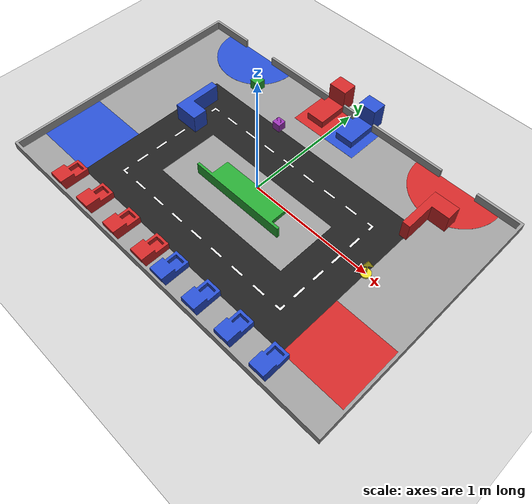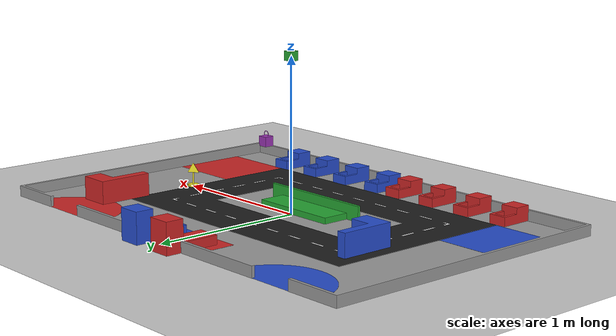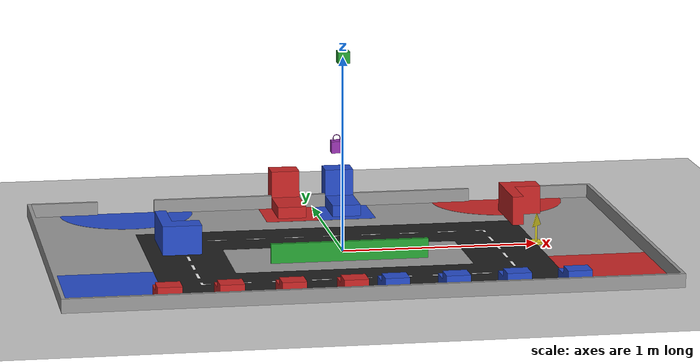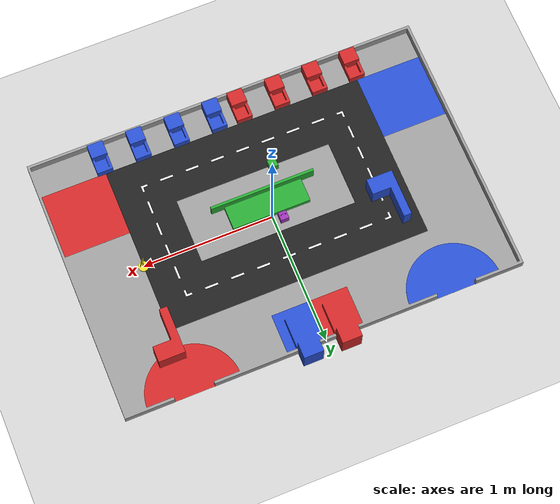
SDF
<sdf version='1.6'>
  <world name='default'>
    <light name='sun' type='directional'>
      <cast_shadows>1</cast_shadows>
      <pose frame=''>0 0 10 0 -0 0</pose>
      <diffuse>0.8 0.8 0.8 1</diffuse>
      <specular>0.2 0.2 0.2 1</specular>
      <attenuation>
        <range>1000</range>
        <constant>0.9</constant>
        <linear>0.01</linear>
        <quadratic>0.001</quadratic>
      </attenuation>
      <direction>-0.5 0.1 -0.9</direction>
    </light>
    <gravity>0 0 -9.8</gravity>
    <magnetic_field>6e-06 2.3e-05 -4.2e-05</magnetic_field>
    <atmosphere type='adiabatic'/>
    <physics name='default_physics' default='0' type='ode'>
      <max_step_size>0.001</max_step_size>
      <real_time_factor>1</real_time_factor>
      <real_time_update_rate>1000</real_time_update_rate>
    </physics>
    <scene>
      <ambient>0.4 0.4 0.4 1</ambient>
      <background>0.7 0.7 0.7 1</background>
      <shadows>1</shadows>
    </scene>
    <audio>
      <device>default</device>
    </audio>
    <wind/>
    <spherical_coordinates>
      <surface_model>EARTH_WGS84</surface_model>
      <latitude_deg>0</latitude_deg>
      <longitude_deg>0</longitude_deg>
      <elevation>0</elevation>
      <heading_deg>0</heading_deg>
    </spherical_coordinates>

    <!-- static models/objects -->

    <model name='ground_plane'>
      <static>1</static>
      <link name='link'>
        <collision name='collision'>
          <geometry>
            <plane>
              <normal>0 0 1</normal>
              <size>100 100</size>
            </plane>
          </geometry>
          <surface>
            <friction>
              <ode>
                <mu>100</mu>
                <mu2>50</mu2>
              </ode>
              <torsional>
                <ode/>
              </torsional>
            </friction>
            <contact>
              <ode/>
            </contact>
            <bounce/>
          </surface>
          <max_contacts>10</max_contacts>
        </collision>
        <visual name='visual'>
          <cast_shadows>0</cast_shadows>
          <geometry>
            <plane>
              <normal>0 0 1</normal>
              <size>100 100</size>
            </plane>
          </geometry>
          <material>
            <script>
              <uri>file://media/materials/scripts/gazebo.material</uri>
              <name>Gazebo/Grey</name>
            </script>
          </material>
        </visual>
        <self_collide>0</self_collide>
        <enable_wind>0</enable_wind>
        <kinematic>0</kinematic>
      </link>
      <pose frame=''>3.08213 1.05988 0 0 -0 0</pose>
    </model>

    <model name='background'>
      <static>1</static>
      <link name='link_0'>
        <inertial>
          <mass>1</mass>
          <inertia>
            <ixx>0.166667</ixx>
            <ixy>0</ixy>
            <ixz>0</ixz>
            <iyy>0.166667</iyy>
            <iyz>0</iyz>
            <izz>0.166667</izz>
          </inertia>
          <pose frame=''>0 0 0 0 -0 0</pose>
        </inertial>
        <pose frame=''>0 0 0 0 -0 0</pose>
        <gravity>1</gravity>
        <self_collide>0</self_collide>
        <kinematic>0</kinematic>
        <enable_wind>0</enable_wind>
        <visual name='visual'>
          <pose frame=''>0 0 0 0 -0 0</pose>
          <geometry>
            <mesh>
              <uri>model://playground.dae</uri>
              <scale>1 1 1</scale>
            </mesh>
          </geometry>
          <material>
            <lighting>1</lighting>
            <script>
              <uri>file://media/materials/scripts/gazebo.material</uri>
              <name>Gazebo/Grey</name>
            </script>
            <shader type='vertex'>
              <normal_map>__default__</normal_map>
            </shader>
            <ambient>0.3 0.3 0.3 1</ambient>
            <diffuse>0.7 0.7 0.7 1</diffuse>
            <specular>0.01 0.01 0.01 1</specular>
            <emissive>0 0 0 1</emissive>
          </material>
          <transparency>0</transparency>
          <cast_shadows>1</cast_shadows>
        </visual>
        <collision name='collision'>
          <laser_retro>0</laser_retro>
          <max_contacts>10</max_contacts>
          <pose frame=''>0 0 0 0 -0 0</pose>
          <geometry>
            <mesh>
              <uri>model://playground.dae</uri>
              <scale>1 1 1</scale>
            </mesh>
          </geometry>
          <surface>
            <friction>
              <ode>
                <mu>1</mu>
                <mu2>1</mu2>
                <fdir1>0 0 0</fdir1>
                <slip1>0</slip1>
                <slip2>0</slip2>
              </ode>
              <torsional>
                <coefficient>1</coefficient>
                <patch_radius>0</patch_radius>
                <surface_radius>0</surface_radius>
                <use_patch_radius>1</use_patch_radius>
                <ode>
                  <slip>0</slip>
                </ode>
              </torsional>
            </friction>
            <bounce>
              <restitution_coefficient>0</restitution_coefficient>
              <threshold>1e+06</threshold>
            </bounce>
            <contact>
              <collide_without_contact>0</collide_without_contact>
              <collide_without_contact_bitmask>1</collide_without_contact_bitmask>
              <collide_bitmask>1</collide_bitmask>
              <ode>
                <soft_cfm>0</soft_cfm>
                <soft_erp>0.2</soft_erp>
                <kp>1e+13</kp>
                <kd>1</kd>
                <max_vel>0.01</max_vel>
                <min_depth>0</min_depth>
              </ode>
              <bullet>
                <split_impulse>1</split_impulse>
                <split_impulse_penetration_threshold>-0.01</split_impulse_penetration_threshold>
                <soft_cfm>0</soft_cfm>
                <soft_erp>0.2</soft_erp>
                <kp>1e+13</kp>
                <kd>1</kd>
              </bullet>
            </contact>
          </surface>
        </collision>
      </link>
      <static>0</static>
      <allow_auto_disable>1</allow_auto_disable>
      <pose frame=''>0 0 0 0 -0 0</pose>
    </model>

    <model name='asphalt'>
      <static>1</static>
      <link name='link_1'>
        <inertial>
          <mass>1</mass>
          <inertia>
            <ixx>0.166667</ixx>
            <ixy>0</ixy>
            <ixz>0</ixz>
            <iyy>0.166667</iyy>
            <iyz>0</iyz>
            <izz>0.166667</izz>
          </inertia>
          <pose frame=''>0 0 0 0 -0 0</pose>
        </inertial>
        <pose frame=''>0 0 0 0 -0 0</pose>
        <gravity>1</gravity>
        <self_collide>0</self_collide>
        <kinematic>0</kinematic>
        <enable_wind>0</enable_wind>
        <visual name='visual'>
          <pose frame=''>0 0 0 0 -0 0</pose>
          <geometry>
            <mesh>
              <uri>model://asphalt.dae</uri>
              <scale>1 1 1</scale>
            </mesh>
          </geometry>
          <material>
            <lighting>1</lighting>
            <script>
              <uri>file://media/materials/scripts/gazebo.material</uri>
              <name>Gazebo/Black</name>
            </script>
            <shader type='vertex'>
              <normal_map>__default__</normal_map>
            </shader>
            <ambient>0 0 0 1</ambient>
            <diffuse>0 0 0 1</diffuse>
            <specular>0.1 0.1 0.1 1</specular>
            <emissive>0 0 0 1</emissive>
          </material>
          <transparency>0</transparency>
          <cast_shadows>1</cast_shadows>
        </visual>
        <collision name='collision'>
          <laser_retro>0</laser_retro>
          <max_contacts>10</max_contacts>
          <pose frame=''>0 0 0 0 -0 0</pose>
          <geometry>
            <mesh>
              <uri>model://asphalt.dae</uri>
              <scale>1 1 1</scale>
            </mesh>
          </geometry>
          <surface>
            <friction>
              <ode>
                <mu>1</mu>
                <mu2>1</mu2>
                <fdir1>0 0 0</fdir1>
                <slip1>0</slip1>
                <slip2>0</slip2>
              </ode>
              <torsional>
                <coefficient>1</coefficient>
                <patch_radius>0</patch_radius>
                <surface_radius>0</surface_radius>
                <use_patch_radius>1</use_patch_radius>
                <ode>
                  <slip>0</slip>
                </ode>
              </torsional>
            </friction>
            <bounce>
              <restitution_coefficient>0</restitution_coefficient>
              <threshold>1e+06</threshold>
            </bounce>
            <contact>
              <collide_without_contact>0</collide_without_contact>
              <collide_without_contact_bitmask>1</collide_without_contact_bitmask>
              <collide_bitmask>1</collide_bitmask>
              <ode>
                <soft_cfm>0</soft_cfm>
                <soft_erp>0.2</soft_erp>
                <kp>1e+13</kp>
                <kd>1</kd>
                <max_vel>0.01</max_vel>
                <min_depth>0</min_depth>
              </ode>
              <bullet>
                <split_impulse>1</split_impulse>
                <split_impulse_penetration_threshold>-0.01</split_impulse_penetration_threshold>
                <soft_cfm>0</soft_cfm>
                <soft_erp>0.2</soft_erp>
                <kp>1e+13</kp>
                <kd>1</kd>
              </bullet>
            </contact>
          </surface>
        </collision>
      </link>
      <static>0</static>
      <allow_auto_disable>1</allow_auto_disable>
      <pose frame=''>0 0 0 0 -0 0</pose>
    </model>
    <model name='stripes'>
      <static>1</static>
      <link name='link_2'>
        <inertial>
          <mass>1</mass>
          <inertia>
            <ixx>0.166667</ixx>
            <ixy>0</ixy>
            <ixz>0</ixz>
            <iyy>0.166667</iyy>
            <iyz>0</iyz>
            <izz>0.166667</izz>
          </inertia>
          <pose frame=''>0 0 0 0 -0 0</pose>
        </inertial>
        <pose frame=''>-0 0.0001 -0.009044 0 -0 0</pose>
        <gravity>1</gravity>
        <self_collide>0</self_collide>
        <kinematic>0</kinematic>
        <enable_wind>0</enable_wind>
        <visual name='visual'>
          <pose frame=''>0 0 0 0 -0 0</pose>
          <geometry>
            <mesh>
              <uri>model://stripes.dae</uri>
              <scale>1 1 1</scale>
            </mesh>
          </geometry>
          <material>
            <lighting>1</lighting>
            <script>
              <uri>file://media/materials/scripts/gazebo.material</uri>
              <name>Gazebo/White</name>
            </script>
            <shader type='vertex'>
              <normal_map>__default__</normal_map>
            </shader>
            <ambient>1 1 1 1</ambient>
            <diffuse>0.7 0.7 0.7 1</diffuse>
            <specular>0.01 0.01 0.01 1</specular>
            <emissive>0 0 0 1</emissive>
          </material>
          <transparency>0</transparency>
          <cast_shadows>1</cast_shadows>
        </visual>
        <collision name='collision'>
          <laser_retro>0</laser_retro>
          <max_contacts>10</max_contacts>
          <pose frame=''>0 0 0 0 -0 0</pose>
          <geometry>
            <mesh>
              <uri>model://stripes.dae</uri>
              <scale>1 1 1</scale>
            </mesh>
          </geometry>
          <surface>
            <friction>
              <ode>
                <mu>1</mu>
                <mu2>1</mu2>
                <fdir1>0 0 0</fdir1>
                <slip1>0</slip1>
                <slip2>0</slip2>
              </ode>
              <torsional>
                <coefficient>1</coefficient>
                <patch_radius>0</patch_radius>
                <surface_radius>0</surface_radius>
                <use_patch_radius>1</use_patch_radius>
                <ode>
                  <slip>0</slip>
                </ode>
              </torsional>
            </friction>
            <bounce>
              <restitution_coefficient>0</restitution_coefficient>
              <threshold>1e+06</threshold>
            </bounce>
            <contact>
              <collide_without_contact>0</collide_without_contact>
              <collide_without_contact_bitmask>1</collide_without_contact_bitmask>
              <collide_bitmask>1</collide_bitmask>
              <ode>
                <soft_cfm>0</soft_cfm>
                <soft_erp>0.2</soft_erp>
                <kp>1e+13</kp>
                <kd>1</kd>
                <max_vel>0.01</max_vel>
                <min_depth>0</min_depth>
              </ode>
              <bullet>
                <split_impulse>1</split_impulse>
                <split_impulse_penetration_threshold>-0.01</split_impulse_penetration_threshold>
                <soft_cfm>0</soft_cfm>
                <soft_erp>0.2</soft_erp>
                <kp>1e+13</kp>
                <kd>1</kd>
              </bullet>
            </contact>
          </surface>
        </collision>
      </link>
      <static>0</static>
      <allow_auto_disable>1</allow_auto_disable>
      <pose frame=''>0 0 0 0 -0 0</pose>
    </model>
    <model name='blue_truck_target'>
      <static>1</static>
      <link name='link_0'>
        <inertial>
          <mass>1</mass>
          <inertia>
            <ixx>0.166667</ixx>
            <ixy>0</ixy>
            <ixz>0</ixz>
            <iyy>0.166667</iyy>
            <iyz>0</iyz>
            <izz>0.166667</izz>
          </inertia>
          <pose frame=''>0 0 0 0 -0 0</pose>
        </inertial>
        <pose frame=''>0 0 0 0 -0 0</pose>
        <gravity>1</gravity>
        <self_collide>0</self_collide>
        <kinematic>0</kinematic>
        <enable_wind>0</enable_wind>
        <visual name='visual'>
          <pose frame=''>0 0 0 0 -0 0</pose>
          <geometry>
            <mesh>
              <uri>model://blue_truck_target.dae</uri>
              <scale>1 1 1</scale>
            </mesh>
          </geometry>
          <material>
            <lighting>1</lighting>
            <script>
              <uri>file://media/materials/scripts/gazebo.material</uri>
              <name>Gazebo/Blue</name>
            </script>
            <shader type='vertex'>
              <normal_map>__default__</normal_map>
            </shader>
            <ambient>0 0 1 1</ambient>
            <diffuse>0 0 1 1</diffuse>
            <specular>0.1 0.1 0.1 1</specular>
            <emissive>0 0 0 1</emissive>
          </material>
          <transparency>0</transparency>
          <cast_shadows>1</cast_shadows>
        </visual>
        <collision name='collision'>
          <laser_retro>0</laser_retro>
          <max_contacts>10</max_contacts>
          <pose frame=''>0 0 0 0 -0 0</pose>
          <geometry>
            <mesh>
              <uri>model://blue_truck_target.dae</uri>
              <scale>1 1 1</scale>
            </mesh>
          </geometry>
          <surface>
            <friction>
              <ode>
                <mu>1</mu>
                <mu2>1</mu2>
                <fdir1>0 0 0</fdir1>
                <slip1>0</slip1>
                <slip2>0</slip2>
              </ode>
              <torsional>
                <coefficient>1</coefficient>
                <patch_radius>0</patch_radius>
                <surface_radius>0</surface_radius>
                <use_patch_radius>1</use_patch_radius>
                <ode>
                  <slip>0</slip>
                </ode>
              </torsional>
            </friction>
            <bounce>
              <restitution_coefficient>0</restitution_coefficient>
              <threshold>1e+06</threshold>
            </bounce>
            <contact>
              <collide_without_contact>0</collide_without_contact>
              <collide_without_contact_bitmask>1</collide_without_contact_bitmask>
              <collide_bitmask>1</collide_bitmask>
              <ode>
                <soft_cfm>0</soft_cfm>
                <soft_erp>0.2</soft_erp>
                <kp>1e+13</kp>
                <kd>1</kd>
                <max_vel>0.01</max_vel>
                <min_depth>0</min_depth>
              </ode>
              <bullet>
                <split_impulse>1</split_impulse>
                <split_impulse_penetration_threshold>-0.01</split_impulse_penetration_threshold>
                <soft_cfm>0</soft_cfm>
                <soft_erp>0.2</soft_erp>
                <kp>1e+13</kp>
                <kd>1</kd>
              </bullet>
            </contact>
          </surface>
        </collision>
      </link>
      <link name='link_1'>
        <inertial>
          <mass>1</mass>
          <inertia>
            <ixx>0.166667</ixx>
            <ixy>0</ixy>
            <ixz>0</ixz>
            <iyy>0.166667</iyy>
            <iyz>0</iyz>
            <izz>0.166667</izz>
          </inertia>
          <pose frame=''>0 0 0 0 -0 0</pose>
        </inertial>
        <pose frame=''>0 0 0 0 -0 0</pose>
        <gravity>1</gravity>
        <self_collide>0</self_collide>
        <kinematic>0</kinematic>
        <enable_wind>0</enable_wind>
        <visual name='visual'>
          <pose frame=''>0 0 0 0 -0 0</pose>
          <geometry>
            <mesh>
              <uri>model://red_truck_target.dae</uri>
              <scale>1 1 1</scale>
            </mesh>
          </geometry>
          <material>
            <lighting>1</lighting>
            <script>
              <uri>file://media/materials/scripts/gazebo.material</uri>
              <name>Gazebo/Red</name>
            </script>
            <shader type='vertex'>
              <normal_map>__default__</normal_map>
            </shader>
            <ambient>1 0 0 1</ambient>
            <diffuse>1 0 0 1</diffuse>
            <specular>0.1 0.1 0.1 1</specular>
            <emissive>0 0 0 1</emissive>
          </material>
          <transparency>0</transparency>
          <cast_shadows>1</cast_shadows>
        </visual>
        <collision name='collision'>
          <laser_retro>0</laser_retro>
          <max_contacts>10</max_contacts>
          <pose frame=''>0 0 0 0 -0 0</pose>
          <geometry>
            <mesh>
              <uri>model://red_truck_target.dae</uri>
              <scale>1 1 1</scale>
            </mesh>
          </geometry>
          <surface>
            <friction>
              <ode>
                <mu>1</mu>
                <mu2>1</mu2>
                <fdir1>0 0 0</fdir1>
                <slip1>0</slip1>
                <slip2>0</slip2>
              </ode>
              <torsional>
                <coefficient>1</coefficient>
                <patch_radius>0</patch_radius>
                <surface_radius>0</surface_radius>
                <use_patch_radius>1</use_patch_radius>
                <ode>
                  <slip>0</slip>
                </ode>
              </torsional>
            </friction>
            <bounce>
              <restitution_coefficient>0</restitution_coefficient>
              <threshold>1e+06</threshold>
            </bounce>
            <contact>
              <collide_without_contact>0</collide_without_contact>
              <collide_without_contact_bitmask>1</collide_without_contact_bitmask>
              <collide_bitmask>1</collide_bitmask>
              <ode>
                <soft_cfm>0</soft_cfm>
                <soft_erp>0.2</soft_erp>
                <kp>1e+13</kp>
                <kd>1</kd>
                <max_vel>0.01</max_vel>
                <min_depth>0</min_depth>
              </ode>
              <bullet>
                <split_impulse>1</split_impulse>
                <split_impulse_penetration_threshold>-0.01</split_impulse_penetration_threshold>
                <soft_cfm>0</soft_cfm>
                <soft_erp>0.2</soft_erp>
                <kp>1e+13</kp>
                <kd>1</kd>
              </bullet>
            </contact>
          </surface>
        </collision>
      </link>
      <static>0</static>
      <allow_auto_disable>1</allow_auto_disable>
      <pose frame=''>0 0 0 0 -0 0</pose>
    </model>
    <model name='center'>
      <static>1</static>
      <link name='link_2'>
        <inertial>
          <mass>1</mass>
          <inertia>
            <ixx>0.166667</ixx>
            <ixy>0</ixy>
            <ixz>0</ixz>
            <iyy>0.166667</iyy>
            <iyz>0</iyz>
            <izz>0.166667</izz>
          </inertia>
          <pose frame=''>0 0 0 0 -0 0</pose>
        </inertial>
        <pose frame=''>0 0 0 0 -0 0</pose>
        <gravity>1</gravity>
        <self_collide>0</self_collide>
        <kinematic>0</kinematic>
        <enable_wind>0</enable_wind>
        <visual name='visual'>
          <pose frame=''>0 0 0 0 -0 0</pose>
          <geometry>
            <mesh>
              <uri>model://center.dae</uri>
              <scale>1 1 1</scale>
            </mesh>
          </geometry>
          <material>
            <lighting>1</lighting>
            <script>
              <uri>file://media/materials/scripts/gazebo.material</uri>
              <name>Gazebo/Green</name>
            </script>
            <shader type='vertex'>
              <normal_map>__default__</normal_map>
            </shader>
            <ambient>0 1 0 1</ambient>
            <diffuse>0 1 0 1</diffuse>
            <specular>0.1 0.1 0.1 1</specular>
            <emissive>0 0 0 1</emissive>
          </material>
          <transparency>0</transparency>
          <cast_shadows>1</cast_shadows>
        </visual>
        <collision name='collision'>
          <laser_retro>0</laser_retro>
          <max_contacts>10</max_contacts>
          <pose frame=''>0 0 0 0 -0 0</pose>
          <geometry>
            <mesh>
              <uri>model://center.dae</uri>
              <scale>1 1 1</scale>
            </mesh>
          </geometry>
          <surface>
            <friction>
              <ode>
                <mu>1</mu>
                <mu2>1</mu2>
                <fdir1>0 0 0</fdir1>
                <slip1>0</slip1>
                <slip2>0</slip2>
              </ode>
              <torsional>
                <coefficient>1</coefficient>
                <patch_radius>0</patch_radius>
                <surface_radius>0</surface_radius>
                <use_patch_radius>1</use_patch_radius>
                <ode>
                  <slip>0</slip>
                </ode>
              </torsional>
            </friction>
            <bounce>
              <restitution_coefficient>0</restitution_coefficient>
              <threshold>1e+06</threshold>
            </bounce>
            <contact>
              <collide_without_contact>0</collide_without_contact>
              <collide_without_contact_bitmask>1</collide_without_contact_bitmask>
              <collide_bitmask>1</collide_bitmask>
              <ode>
                <soft_cfm>0</soft_cfm>
                <soft_erp>0.2</soft_erp>
                <kp>1e+13</kp>
                <kd>1</kd>
                <max_vel>0.01</max_vel>
                <min_depth>0</min_depth>
              </ode>
              <bullet>
                <split_impulse>1</split_impulse>
                <split_impulse_penetration_threshold>-0.01</split_impulse_penetration_threshold>
                <soft_cfm>0</soft_cfm>
                <soft_erp>0.2</soft_erp>
                <kp>1e+13</kp>
                <kd>1</kd>
              </bullet>
            </contact>
          </surface>
        </collision>
      </link>
      <static>0</static>
      <allow_auto_disable>1</allow_auto_disable>
      <pose frame=''>0 0 0 0 -0 0</pose>
    </model>
    <model name='red_square'>
      <static>1</static>
      <link name='link_5'>
        <inertial>
          <mass>1</mass>
          <inertia>
            <ixx>0.166667</ixx>
            <ixy>0</ixy>
            <ixz>0</ixz>
            <iyy>0.166667</iyy>
            <iyz>0</iyz>
            <izz>0.166667</izz>
          </inertia>
          <pose frame=''>0 0 0 0 -0 0</pose>
        </inertial>
        <pose frame=''>0 0 0 0 -0 0</pose>
        <gravity>1</gravity>
        <self_collide>0</self_collide>
        <kinematic>0</kinematic>
        <enable_wind>0</enable_wind>
        <visual name='visual'>
          <pose frame=''>0 0 0 0 -0 0</pose>
          <geometry>
            <mesh>
              <uri>model://blue_square.dae</uri>
              <scale>1 1 1</scale>
            </mesh>
          </geometry>
          <material>
            <lighting>1</lighting>
            <script>
              <uri>file://media/materials/scripts/gazebo.material</uri>
              <name>Gazebo/Blue</name>
            </script>
            <shader type='vertex'>
              <normal_map>__default__</normal_map>
            </shader>
            <ambient>0 0 1 1</ambient>
            <diffuse>0 0 1 1</diffuse>
            <specular>0.1 0.1 0.1 1</specular>
            <emissive>0 0 0 1</emissive>
          </material>
          <transparency>0</transparency>
          <cast_shadows>1</cast_shadows>
        </visual>
        <collision name='collision'>
          <laser_retro>0</laser_retro>
          <max_contacts>10</max_contacts>
          <pose frame=''>0 0 0 0 -0 0</pose>
          <geometry>
            <mesh>
              <uri>model://blue_square.dae</uri>
              <scale>1 1 1</scale>
            </mesh>
          </geometry>
          <surface>
            <friction>
              <ode>
                <mu>1</mu>
                <mu2>1</mu2>
                <fdir1>0 0 0</fdir1>
                <slip1>0</slip1>
                <slip2>0</slip2>
              </ode>
              <torsional>
                <coefficient>1</coefficient>
                <patch_radius>0</patch_radius>
                <surface_radius>0</surface_radius>
                <use_patch_radius>1</use_patch_radius>
                <ode>
                  <slip>0</slip>
                </ode>
              </torsional>
            </friction>
            <bounce>
              <restitution_coefficient>0</restitution_coefficient>
              <threshold>1e+06</threshold>
            </bounce>
            <contact>
              <collide_without_contact>0</collide_without_contact>
              <collide_without_contact_bitmask>1</collide_without_contact_bitmask>
              <collide_bitmask>1</collide_bitmask>
              <ode>
                <soft_cfm>0</soft_cfm>
                <soft_erp>0.2</soft_erp>
                <kp>1e+13</kp>
                <kd>1</kd>
                <max_vel>0.01</max_vel>
                <min_depth>0</min_depth>
              </ode>
              <bullet>
                <split_impulse>1</split_impulse>
                <split_impulse_penetration_threshold>-0.01</split_impulse_penetration_threshold>
                <soft_cfm>0</soft_cfm>
                <soft_erp>0.2</soft_erp>
                <kp>1e+13</kp>
                <kd>1</kd>
              </bullet>
            </contact>
          </surface>
        </collision>
      </link>
      <link name='link_6'>
        <inertial>
          <mass>1</mass>
          <inertia>
            <ixx>0.166667</ixx>
            <ixy>0</ixy>
            <ixz>0</ixz>
            <iyy>0.166667</iyy>
            <iyz>0</iyz>
            <izz>0.166667</izz>
          </inertia>
          <pose frame=''>0 0 0 0 -0 0</pose>
        </inertial>
        <pose frame=''>0 0 0 0 -0 0</pose>
        <gravity>1</gravity>
        <self_collide>0</self_collide>
        <kinematic>0</kinematic>
        <enable_wind>0</enable_wind>
        <visual name='visual'>
          <pose frame=''>0 0 0 0 -0 0</pose>
          <geometry>
            <mesh>
              <uri>model://red_square.dae</uri>
              <scale>1 1 1</scale>
            </mesh>
          </geometry>
          <material>
            <lighting>1</lighting>
            <script>
              <uri>file://media/materials/scripts/gazebo.material</uri>
              <name>Gazebo/Red</name>
            </script>
            <shader type='vertex'>
              <normal_map>__default__</normal_map>
            </shader>
            <ambient>1 0 0 1</ambient>
            <diffuse>1 0 0 1</diffuse>
            <specular>0.1 0.1 0.1 1</specular>
            <emissive>0 0 0 1</emissive>
          </material>
          <transparency>0</transparency>
          <cast_shadows>1</cast_shadows>
        </visual>
        <collision name='collision'>
          <laser_retro>0</laser_retro>
          <max_contacts>10</max_contacts>
          <pose frame=''>0 0 0 0 -0 0</pose>
          <geometry>
            <mesh>
              <uri>model://red_square.dae</uri>
              <scale>1 1 1</scale>
            </mesh>
          </geometry>
          <surface>
            <friction>
              <ode>
                <mu>1</mu>
                <mu2>1</mu2>
                <fdir1>0 0 0</fdir1>
                <slip1>0</slip1>
                <slip2>0</slip2>
              </ode>
              <torsional>
                <coefficient>1</coefficient>
                <patch_radius>0</patch_radius>
                <surface_radius>0</surface_radius>
                <use_patch_radius>1</use_patch_radius>
                <ode>
                  <slip>0</slip>
                </ode>
              </torsional>
            </friction>
            <bounce>
              <restitution_coefficient>0</restitution_coefficient>
              <threshold>1e+06</threshold>
            </bounce>
            <contact>
              <collide_without_contact>0</collide_without_contact>
              <collide_without_contact_bitmask>1</collide_without_contact_bitmask>
              <collide_bitmask>1</collide_bitmask>
              <ode>
                <soft_cfm>0</soft_cfm>
                <soft_erp>0.2</soft_erp>
                <kp>1e+13</kp>
                <kd>1</kd>
                <max_vel>0.01</max_vel>
                <min_depth>0</min_depth>
              </ode>
              <bullet>
                <split_impulse>1</split_impulse>
                <split_impulse_penetration_threshold>-0.01</split_impulse_penetration_threshold>
                <soft_cfm>0</soft_cfm>
                <soft_erp>0.2</soft_erp>
                <kp>1e+13</kp>
                <kd>1</kd>
              </bullet>
            </contact>
          </surface>
        </collision>
      </link>
      <static>0</static>
      <allow_auto_disable>1</allow_auto_disable>
      <pose frame=''>0 0 0 0 -0 0</pose>
    </model>
    <model name='blue_half_cylinder'>
      <static>1</static>
      <link name='link_7'>
        <inertial>
          <mass>1</mass>
          <inertia>
            <ixx>0.166667</ixx>
            <ixy>0</ixy>
            <ixz>0</ixz>
            <iyy>0.166667</iyy>
            <iyz>0</iyz>
            <izz>0.166667</izz>
          </inertia>
          <pose frame=''>0 0 0 0 -0 0</pose>
        </inertial>
        <pose frame=''>0 0 0 0 -0 0</pose>
        <gravity>1</gravity>
        <self_collide>0</self_collide>
        <kinematic>0</kinematic>
        <enable_wind>0</enable_wind>
        <visual name='visual'>
          <pose frame=''>0 0 0 0 -0 0</pose>
          <geometry>
            <mesh>
              <uri>model://red_half_cylinder.dae</uri>
              <scale>1 1 1</scale>
            </mesh>
          </geometry>
          <material>
            <lighting>1</lighting>
            <script>
              <uri>file://media/materials/scripts/gazebo.material</uri>
              <name>Gazebo/Red</name>
            </script>
            <shader type='vertex'>
              <normal_map>__default__</normal_map>
            </shader>
            <ambient>1 0 0 1</ambient>
            <diffuse>1 0 0 1</diffuse>
            <specular>0.1 0.1 0.1 1</specular>
            <emissive>0 0 0 1</emissive>
          </material>
          <transparency>0</transparency>
          <cast_shadows>1</cast_shadows>
        </visual>
        <collision name='collision'>
          <laser_retro>0</laser_retro>
          <max_contacts>10</max_contacts>
          <pose frame=''>0 0 0 0 -0 0</pose>
          <geometry>
            <mesh>
              <uri>model://red_half_cylinder.dae</uri>
              <scale>1 1 1</scale>
            </mesh>
          </geometry>
          <surface>
            <friction>
              <ode>
                <mu>1</mu>
                <mu2>1</mu2>
                <fdir1>0 0 0</fdir1>
                <slip1>0</slip1>
                <slip2>0</slip2>
              </ode>
              <torsional>
                <coefficient>1</coefficient>
                <patch_radius>0</patch_radius>
                <surface_radius>0</surface_radius>
                <use_patch_radius>1</use_patch_radius>
                <ode>
                  <slip>0</slip>
                </ode>
              </torsional>
            </friction>
            <bounce>
              <restitution_coefficient>0</restitution_coefficient>
              <threshold>1e+06</threshold>
            </bounce>
            <contact>
              <collide_without_contact>0</collide_without_contact>
              <collide_without_contact_bitmask>1</collide_without_contact_bitmask>
              <collide_bitmask>1</collide_bitmask>
              <ode>
                <soft_cfm>0</soft_cfm>
                <soft_erp>0.2</soft_erp>
                <kp>1e+13</kp>
                <kd>1</kd>
                <max_vel>0.01</max_vel>
                <min_depth>0</min_depth>
              </ode>
              <bullet>
                <split_impulse>1</split_impulse>
                <split_impulse_penetration_threshold>-0.01</split_impulse_penetration_threshold>
                <soft_cfm>0</soft_cfm>
                <soft_erp>0.2</soft_erp>
                <kp>1e+13</kp>
                <kd>1</kd>
              </bullet>
            </contact>
          </surface>
        </collision>
      </link>
      <link name='link_8'>
        <inertial>
          <mass>1</mass>
          <inertia>
            <ixx>0.166667</ixx>
            <ixy>0</ixy>
            <ixz>0</ixz>
            <iyy>0.166667</iyy>
            <iyz>0</iyz>
            <izz>0.166667</izz>
          </inertia>
          <pose frame=''>0 0 0 0 -0 0</pose>
        </inertial>
        <pose frame=''>0 0 0 0 -0 0</pose>
        <gravity>1</gravity>
        <self_collide>0</self_collide>
        <kinematic>0</kinematic>
        <enable_wind>0</enable_wind>
        <visual name='visual'>
          <pose frame=''>0 0 0 0 -0 0</pose>
          <geometry>
            <mesh>
              <uri>model://blue_half_cylinder.dae</uri>
              <scale>1 1 1</scale>
            </mesh>
          </geometry>
          <material>
            <lighting>1</lighting>
            <script>
              <uri>file://media/materials/scripts/gazebo.material</uri>
              <name>Gazebo/Blue</name>
            </script>
            <shader type='vertex'>
              <normal_map>__default__</normal_map>
            </shader>
            <ambient>0 0 1 1</ambient>
            <diffuse>0 0 1 1</diffuse>
            <specular>0.1 0.1 0.1 1</specular>
            <emissive>0 0 0 1</emissive>
          </material>
          <transparency>0</transparency>
          <cast_shadows>1</cast_shadows>
        </visual>
        <collision name='collision'>
          <laser_retro>0</laser_retro>
          <max_contacts>10</max_contacts>
          <pose frame=''>0 0 0 0 -0 0</pose>
          <geometry>
            <mesh>
              <uri>model://blue_half_cylinder.dae</uri>
              <scale>1 1 1</scale>
            </mesh>
          </geometry>
          <surface>
            <friction>
              <ode>
                <mu>1</mu>
                <mu2>1</mu2>
                <fdir1>0 0 0</fdir1>
                <slip1>0</slip1>
                <slip2>0</slip2>
              </ode>
              <torsional>
                <coefficient>1</coefficient>
                <patch_radius>0</patch_radius>
                <surface_radius>0</surface_radius>
                <use_patch_radius>1</use_patch_radius>
                <ode>
                  <slip>0</slip>
                </ode>
              </torsional>
            </friction>
            <bounce>
              <restitution_coefficient>0</restitution_coefficient>
              <threshold>1e+06</threshold>
            </bounce>
            <contact>
              <collide_without_contact>0</collide_without_contact>
              <collide_without_contact_bitmask>1</collide_without_contact_bitmask>
              <collide_bitmask>1</collide_bitmask>
              <ode>
                <soft_cfm>0</soft_cfm>
                <soft_erp>0.2</soft_erp>
                <kp>1e+13</kp>
                <kd>1</kd>
                <max_vel>0.01</max_vel>
                <min_depth>0</min_depth>
              </ode>
              <bullet>
                <split_impulse>1</split_impulse>
                <split_impulse_penetration_threshold>-0.01</split_impulse_penetration_threshold>
                <soft_cfm>0</soft_cfm>
                <soft_erp>0.2</soft_erp>
                <kp>1e+13</kp>
                <kd>1</kd>
              </bullet>
            </contact>
          </surface>
        </collision>
      </link>
      <static>0</static>
      <allow_auto_disable>1</allow_auto_disable>
      <pose frame=''>0 0 0 0 -0 0</pose>
    </model>
    <gui fullscreen='0'>
      <camera name='user_camera'>
        <pose frame=''>2.07101 3.31167 2.22282 -0 0.427058 -2.1921</pose>
        <view_controller>orbit</view_controller>
        <projection_type>perspective</projection_type>
      </camera>
    </gui>

    <!-- spawned/dynamic objects -->

    <include>
        <uri>model://red_truck</uri>
        <pose>1.06165 0.691468 0.080746 0 -0 0</pose>
    </include>

    <include>
        <uri>model://blue_truck</uri>
        <pose>-0.81448 0.10004 0.075998 -3.14159 0 0</pose>
    </include>

    <include>
        <uri>model://battery</uri>
        <pose>0 0.2 0.5 0 0 0</pose>
    </include>

    <include>
        <uri>model://cube</uri>
        <pose>0 0 1 0 0 0</pose>
    </include>

    <include>
        <uri>model://traffic_sign</uri>
        <pose>1 0 0 0 0 0</pose>
    </include>

    <include>
        <uri>model://blue_car</uri>
        <pose>0.1 -0.913236 0.044351 0 0  1.5708</pose>
    </include>

    <include>
        <uri>model://blue_car</uri>
        <pose>0.4 -0.90834 0.043375 0 0 1.57088</pose>
    </include>

    <include>
        <uri>model://blue_car</uri>
        <pose>0.7 -0.90834 0.043375 0 0 1.570888</pose>
    </include>

    <include>
        <uri>model://blue_car</uri>
        <pose>1.0 -0.90834 0.043375 0 0 1.57088</pose>
    </include>

    <include>
        <uri>model://red_car</uri>
        <pose>-0.1 -0.913236 0.044351 0 0  1.5708</pose>
    </include>

    <include>
        <uri>model://red_car</uri>
        <pose>-0.4 -0.913236 0.044351 0 0  1.5708</pose>
    </include>

    <include>
        <uri>model://red_car</uri>
        <pose>-0.7 -0.913236 0.044351 0 0  1.5708</pose>
    </include>

    <include>
        <uri>model://red_car</uri>
        <pose>-1.0 -0.913236 0.044351 0 0  1.5708</pose>
    </include>

  </world>
</sdf>

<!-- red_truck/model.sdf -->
<sdf version='1.6'>
<model name='red_truck'>
      <link name='link'>
        <inertial>
          <mass>0.712</mass>
          <inertia>
            <ixx>0.1</ixx>
            <ixy>0</ixy>
            <ixz>0</ixz>
            <iyy>0.1</iyy>
            <iyz>0</iyz>
            <izz>0.1</izz>
          </inertia>
          <pose frame=''>0 0 0 0 -0 0</pose>
        </inertial>
        <pose frame=''>0 0 0 0 -0 0</pose>
        <gravity>1</gravity>
        <self_collide>0</self_collide>
        <kinematic>0</kinematic>
        <enable_wind>0</enable_wind>
        <visual name='visual'>
          <pose frame=''>0 0 0 0 -0 0</pose>
          <geometry>
            <mesh>
              <uri>model://truck.dae</uri>
              <scale>1 1 1</scale>
            </mesh>
          </geometry>
          <material>
            <lighting>1</lighting>
            <script>
              <uri>file://media/materials/scripts/gazebo.material</uri>
              <name>Gazebo/Red</name>
            </script>
            <shader type='vertex'>
              <normal_map>__default__</normal_map>
            </shader>
            <ambient>1 0 0 1</ambient>
            <diffuse>1 0 0 1</diffuse>
            <specular>0.1 0.1 0.1 1</specular>
            <emissive>0 0 0 1</emissive>
          </material>
          <transparency>0</transparency>
          <cast_shadows>1</cast_shadows>
        </visual>
        <collision name='collision'>
          <laser_retro>0</laser_retro>
          <max_contacts>10</max_contacts>
          <pose frame=''>0 0 0 0 -0 0</pose>
          <geometry>
            <mesh>
              <uri>model://truck.dae</uri>
              <scale>1 1 1</scale>
            </mesh>
          </geometry>
          <surface>
            <friction>
              <ode>
                <mu>1</mu>
                <mu2>1</mu2>
                <fdir1>0 0 0</fdir1>
                <slip1>0</slip1>
                <slip2>0</slip2>
              </ode>
              <torsional>
                <coefficient>1</coefficient>
                <patch_radius>0</patch_radius>
                <surface_radius>0</surface_radius>
                <use_patch_radius>1</use_patch_radius>
                <ode>
                  <slip>0</slip>
                </ode>
              </torsional>
            </friction>
            <bounce>
              <restitution_coefficient>0</restitution_coefficient>
              <threshold>1e+06</threshold>
            </bounce>
            <contact>
              <collide_without_contact>0</collide_without_contact>
              <collide_without_contact_bitmask>1</collide_without_contact_bitmask>
              <collide_bitmask>1</collide_bitmask>
              <ode>
                <soft_cfm>0</soft_cfm>
                <soft_erp>0.2</soft_erp>
                <kp>1e+13</kp>
                <kd>1</kd>
                <max_vel>0.01</max_vel>
                <min_depth>0</min_depth>
              </ode>
              <bullet>
                <split_impulse>1</split_impulse>
                <split_impulse_penetration_threshold>-0.01</split_impulse_penetration_threshold>
                <soft_cfm>0</soft_cfm>
                <soft_erp>0.2</soft_erp>
                <kp>1e+13</kp>
                <kd>1</kd>
              </bullet>
            </contact>
          </surface>
        </collision>
      </link>
      <static>0</static>
      <allow_auto_disable>1</allow_auto_disable>
      <pose frame=''>0 0 0 0 -0 0</pose>
    </model>
</sdf>

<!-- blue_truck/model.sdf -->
<sdf version='1.6'>
<model name='blue_truck'>
      <link name='link'>
        <inertial>
          <mass>0.712</mass>
          <inertia>
            <ixx>0.1</ixx>
            <ixy>0</ixy>
            <ixz>0</ixz>
            <iyy>0.1</iyy>
            <iyz>0</iyz>
            <izz>0.1</izz>
          </inertia>
          <pose frame=''>0 0 0 0 -0 0</pose>
        </inertial>
        <pose frame=''>0 0 0 0 -0 0</pose>
        <gravity>1</gravity>
        <self_collide>0</self_collide>
        <kinematic>0</kinematic>
        <enable_wind>0</enable_wind>
        <visual name='visual'>
          <pose frame=''>0 0 0 0 -0 0</pose>
          <geometry>
            <mesh>
              <uri>model://truck.dae</uri>
              <scale>1 1 1</scale>
            </mesh>
          </geometry>
          <material>
            <lighting>1</lighting>
            <script>
              <uri>file://media/materials/scripts/gazebo.material</uri>
              <name>Gazebo/Blue</name>
            </script>
            <shader type='vertex'>
              <normal_map>__default__</normal_map>
            </shader>
            <ambient>0 0 1 1</ambient>
            <diffuse>0 0 1 1</diffuse>
            <specular>0.1 0.1 0.1 1</specular>
            <emissive>0 0 0 1</emissive>
          </material>
          <transparency>0</transparency>
          <cast_shadows>1</cast_shadows>
        </visual>
        <collision name='collision'>
          <laser_retro>0</laser_retro>
          <max_contacts>10</max_contacts>
          <pose frame=''>0 0 0 0 -0 0</pose>
          <geometry>
            <mesh>
              <uri>model://truck.dae</uri>
              <scale>1 1 1</scale>
            </mesh>
          </geometry>
          <surface>
            <friction>
              <ode>
                <mu>1</mu>
                <mu2>1</mu2>
                <fdir1>0 0 0</fdir1>
                <slip1>0</slip1>
                <slip2>0</slip2>
              </ode>
              <torsional>
                <coefficient>1</coefficient>
                <patch_radius>0</patch_radius>
                <surface_radius>0</surface_radius>
                <use_patch_radius>1</use_patch_radius>
                <ode>
                  <slip>0</slip>
                </ode>
              </torsional>
            </friction>
            <bounce>
              <restitution_coefficient>0</restitution_coefficient>
              <threshold>1e+06</threshold>
            </bounce>
            <contact>
              <collide_without_contact>0</collide_without_contact>
              <collide_without_contact_bitmask>1</collide_without_contact_bitmask>
              <collide_bitmask>1</collide_bitmask>
              <ode>
                <soft_cfm>0</soft_cfm>
                <soft_erp>0.2</soft_erp>
                <kp>1e+13</kp>
                <kd>1</kd>
                <max_vel>0.01</max_vel>
                <min_depth>0</min_depth>
              </ode>
              <bullet>
                <split_impulse>1</split_impulse>
                <split_impulse_penetration_threshold>-0.01</split_impulse_penetration_threshold>
                <soft_cfm>0</soft_cfm>
                <soft_erp>0.2</soft_erp>
                <kp>1e+13</kp>
                <kd>1</kd>
              </bullet>
            </contact>
          </surface>
        </collision>
      </link>
      <static>0</static>
      <allow_auto_disable>1</allow_auto_disable>
      <pose frame=''>0 0 0 0 0 0</pose>
    </model>
</sdf>

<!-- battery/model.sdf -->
<sdf version='1.6'>
<model name='battery'>
      <link name='link_6'>
        <inertial>
          <mass>0.068</mass>
          <inertia>
            <ixx>0.0001</ixx>
            <ixy>0</ixy>
            <ixz>0</ixz>
            <iyy>0.0001</iyy>
            <iyz>0</iyz>
            <izz>0.0001</izz>
          </inertia>
          <pose frame=''>0 0 0 0 -0 0</pose>
        </inertial>
        <pose frame=''>0 0 0 0 -0 0</pose>
        <gravity>1</gravity>
        <self_collide>0</self_collide>
        <kinematic>0</kinematic>
        <enable_wind>0</enable_wind>
        <visual name='visual'>
          <pose frame=''>0 0 0 0 -0 0</pose>
          <geometry>
            <mesh>
              <uri>model://bat.dae</uri>
              <scale>1 1 1</scale>
            </mesh>
          </geometry>
          <material>
            <lighting>1</lighting>
            <script>
              <uri>file://media/materials/scripts/gazebo.material</uri>
              <name>Gazebo/Purple</name>
            </script>
            <shader type='vertex'>
              <normal_map>__default__</normal_map>
            </shader>
            <ambient>0.7 0 0.7 1</ambient>
            <diffuse>0.7 0 0.7 1</diffuse>
            <specular>0.1 0.1 0.1 1</specular>
            <emissive>0 0 0 1</emissive>
          </material>
          <transparency>0</transparency>
          <cast_shadows>1</cast_shadows>
        </visual>
        <collision name='collision'>
          <laser_retro>0</laser_retro>
          <max_contacts>10</max_contacts>
          <pose frame=''>0 0 0 0 -0 0</pose>
          <geometry>
            <mesh>
              <uri>model://bat.dae</uri>
              <scale>1 1 1</scale>
            </mesh>
          </geometry>
          <surface>
            <friction>
              <ode>
                <mu>1</mu>
                <mu2>1</mu2>
                <fdir1>0 0 0</fdir1>
                <slip1>0</slip1>
                <slip2>0</slip2>
              </ode>
              <torsional>
                <coefficient>1</coefficient>
                <patch_radius>0</patch_radius>
                <surface_radius>0</surface_radius>
                <use_patch_radius>1</use_patch_radius>
                <ode>
                  <slip>0</slip>
                </ode>
              </torsional>
            </friction>
            <bounce>
              <restitution_coefficient>0</restitution_coefficient>
              <threshold>1e+06</threshold>
            </bounce>
            <contact>
              <collide_without_contact>0</collide_without_contact>
              <collide_without_contact_bitmask>1</collide_without_contact_bitmask>
              <collide_bitmask>1</collide_bitmask>
              <ode>
                <soft_cfm>0</soft_cfm>
                <soft_erp>0.2</soft_erp>
                <kp>1e+13</kp>
                <kd>1</kd>
                <max_vel>0.01</max_vel>
                <min_depth>0</min_depth>
              </ode>
              <bullet>
                <split_impulse>1</split_impulse>
                <split_impulse_penetration_threshold>-0.01</split_impulse_penetration_threshold>
                <soft_cfm>0</soft_cfm>
                <soft_erp>0.2</soft_erp>
                <kp>1e+13</kp>
                <kd>1</kd>
              </bullet>
            </contact>
          </surface>
        </collision>
      </link>
      <static>0</static>
      <allow_auto_disable>1</allow_auto_disable>
      <pose frame=''>0 0 0 0 0 0</pose>
    </model>
</sdf>

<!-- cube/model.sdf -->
<!-- inertia computed from https://en.wikipedia.org/wiki/List_of_moments_of_inertia -->

<sdf version='1.6'>
 <model name='cube'>
      <link name='link_0'>
        <inertial>
          <mass>0.1</mass>
          <inertia>
            <ixx>0.00006</ixx>
            <ixy>0</ixy>
            <ixz>0</ixz>
            <iyy>0.00006</iyy>
            <iyz>0</iyz>
            <izz>0.00006</izz>
          </inertia>
          <pose frame=''>0 0 0 0 -0 0</pose>
        </inertial>
        <pose frame=''>0 0 0 0 -0 0</pose>
        <gravity>1</gravity>
        <self_collide>0</self_collide>
        <kinematic>0</kinematic>
        <enable_wind>0</enable_wind>
        <visual name='visual'>
          <pose frame=''>0 0 0 0 -0 0</pose>
          <geometry>
            <mesh>
              <uri>model://cube.dae</uri>
              <scale>1 1 1</scale>
            </mesh>
          </geometry>
          <material>
            <lighting>1</lighting>
            <script>
              <uri>file://media/materials/scripts/gazebo.material</uri>
              <name>Gazebo/Green</name>
            </script>
            <shader type='vertex'>
              <normal_map>__default__</normal_map>
            </shader>
            <ambient>0.1 1 0.1 1</ambient>
            <diffuse>0.1 1 0.1 1</diffuse>
            <specular>0.1 0.1 0.1 1</specular>
            <emissive>0 0 0 1</emissive>
          </material>
          <transparency>0</transparency>
          <cast_shadows>1</cast_shadows>
        </visual>
        <collision name='collision'>
          <laser_retro>0</laser_retro>
          <max_contacts>10</max_contacts>
          <pose frame=''>0 0 0 0 -0 0</pose>
          <geometry>
            <mesh>
              <uri>model://cube.dae</uri>
              <scale>1 1 1</scale>
            </mesh>
          </geometry>
          <surface>
            <friction>
              <ode>
                <mu>1</mu>
                <mu2>1</mu2>
                <fdir1>0 0 0</fdir1>
                <slip1>0</slip1>
                <slip2>0</slip2>
              </ode>
              <torsional>
                <coefficient>1</coefficient>
                <patch_radius>0</patch_radius>
                <surface_radius>0</surface_radius>
                <use_patch_radius>1</use_patch_radius>
                <ode>
                  <slip>0</slip>
                </ode>
              </torsional>
            </friction>
            <bounce>
              <restitution_coefficient>0</restitution_coefficient>
              <threshold>1e+06</threshold>
            </bounce>
            <contact>
              <collide_without_contact>0</collide_without_contact>
              <collide_without_contact_bitmask>1</collide_without_contact_bitmask>
              <collide_bitmask>1</collide_bitmask>
              <ode>
                <soft_cfm>0</soft_cfm>
                <soft_erp>0.2</soft_erp>
                <kp>1e+13</kp>
                <kd>1</kd>
                <max_vel>0.01</max_vel>
                <min_depth>0</min_depth>
              </ode>
              <bullet>
                <split_impulse>1</split_impulse>
                <split_impulse_penetration_threshold>-0.01</split_impulse_penetration_threshold>
                <soft_cfm>0</soft_cfm>
                <soft_erp>0.2</soft_erp>
                <kp>1e+13</kp>
                <kd>1</kd>
              </bullet>
            </contact>
          </surface>
        </collision>
      </link>
      <static>0</static>
      <allow_auto_disable>1</allow_auto_disable>
      <pose frame=''>0 0 0 0 0 0</pose>
    </model>
</sdf>

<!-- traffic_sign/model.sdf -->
<sdf version="1.6">
<model name='traffic_sign'>
    <link name='link'>
    <inertial>
        <mass>0.168</mass>
        <inertia>
        <ixx>0.0001</ixx>
        <ixy>0</ixy>
        <ixz>0</ixz>
        <iyy>0.0001</iyy>
        <iyz>0</iyz>
        <izz>0.0001</izz>
        </inertia>
        <pose frame=''>0 0 0 0 -0 0</pose>
    </inertial>
    <pose frame=''>0 0 0 0 -0 0</pose>
    <gravity>1</gravity>
    <self_collide>0</self_collide>
    <kinematic>0</kinematic>
    <enable_wind>0</enable_wind>
    <visual name='visual'>
        <pose frame=''>0 0 0 0 -0 0</pose>
        <geometry>
        <mesh>
            <uri>model://traffic_sign.dae</uri>
            <scale>1 1 1</scale>
        </mesh>
        </geometry>
        <material>
        <lighting>1</lighting>
        <script>
            <uri>file://media/materials/scripts/gazebo.material</uri>
            <name>Gazebo/Yellow</name>
        </script>
        <shader type='pixel'>
            <normal_map>__default__</normal_map>
        </shader>
        <ambient>1 1 0 1</ambient>
        <diffuse>1 1 0 1</diffuse>
        <emissive>0 0 0 1</emissive>
        <specular>0 0 0 0</specular>
        </material>
        <transparency>0</transparency>
        <cast_shadows>1</cast_shadows>
    </visual>
    <collision name='collision'>
        <laser_retro>0</laser_retro>
        <max_contacts>10</max_contacts>
        <pose frame=''>0 0 0 0 -0 0</pose>
        <geometry>
        <mesh>
            <uri>model://traffic_sign.dae</uri>
            <scale>1 1 1</scale>
        </mesh>
        </geometry>
        <surface>
        <friction>
            <ode>
            <mu>1</mu>
            <mu2>1</mu2>
            <fdir1>0 0 0</fdir1>
            <slip1>0</slip1>
            <slip2>0</slip2>
            </ode>
            <torsional>
            <coefficient>1</coefficient>
            <patch_radius>0</patch_radius>
            <surface_radius>0</surface_radius>
            <use_patch_radius>1</use_patch_radius>
            <ode>
                <slip>0</slip>
            </ode>
            </torsional>
        </friction>
        <bounce>
            <restitution_coefficient>0</restitution_coefficient>
            <threshold>1e+06</threshold>
        </bounce>
        <contact>
            <collide_without_contact>0</collide_without_contact>
            <collide_without_contact_bitmask>1</collide_without_contact_bitmask>
            <collide_bitmask>1</collide_bitmask>
            <ode>
            <soft_cfm>0</soft_cfm>
            <soft_erp>0.2</soft_erp>
            <kp>1e+13</kp>
            <kd>1</kd>
            <max_vel>0.01</max_vel>
            <min_depth>0</min_depth>
            </ode>
            <bullet>
            <split_impulse>1</split_impulse>
            <split_impulse_penetration_threshold>-0.01</split_impulse_penetration_threshold>
            <soft_cfm>0</soft_cfm>
            <soft_erp>0.2</soft_erp>
            <kp>1e+13</kp>
            <kd>1</kd>
            </bullet>
        </contact>
        </surface>
    </collision>
    </link>
    <static>0</static>
    <allow_auto_disable>1</allow_auto_disable>
    <pose frame=''>0 0 0 0 00 0</pose>
</model>
</sdf>

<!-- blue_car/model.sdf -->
<sdf version='1.6'>
<model name='blue_car'>
      <link name='blue_car_link'>
        <inertial>
          <mass>1</mass>
          <inertia>
            <ixx>0.166667</ixx>
            <ixy>0</ixy>
            <ixz>0</ixz>
            <iyy>0.166667</iyy>
            <iyz>0</iyz>
            <izz>0.166667</izz>
          </inertia>
          <pose frame=''>0 0 0 0 -0 0</pose>
        </inertial>
        <pose frame=''>0 0 0 0 -0 0</pose>
        <self_collide>0</self_collide>
        <enable_wind>0</enable_wind>
        <kinematic>0</kinematic>
        <gravity>1</gravity>
        <visual name='visual'>
          <pose frame=''>0 0 0 0 -0 0</pose>
          <geometry>
            <mesh>
              <uri>model://car.dae</uri>
              <scale>1 1 1</scale>
            </mesh>
          </geometry>
          <material>
            <lighting>1</lighting>
            <script>
              <uri>file://media/materials/scripts/gazebo.material</uri>
              <name>Gazebo/Blue</name>
            </script>
            <shader type='vertex'>
              <normal_map>__default__</normal_map>
            </shader>
            <ambient>0 0 1 1</ambient>
            <diffuse>0 0 1 1</diffuse>
            <specular>0.1 0.1 0.1 1</specular>
            <emissive>0 0 0 1</emissive>
          </material>
          <transparency>0</transparency>
          <cast_shadows>1</cast_shadows>
        </visual>
        <collision name='collision'>
          <laser_retro>0</laser_retro>
          <max_contacts>10</max_contacts>
          <pose frame=''>0 0 0 0 -0 0</pose>
          <geometry>
            <mesh>
              <uri>model://car.dae</uri>
              <scale>1 1 1</scale>
            </mesh>
          </geometry>
          <surface>
            <friction>
              <ode>
                <mu>1</mu>
                <mu2>1</mu2>
                <fdir1>0 0 0</fdir1>
                <slip1>0</slip1>
                <slip2>0</slip2>
              </ode>
              <torsional>
                <coefficient>1</coefficient>
                <patch_radius>0</patch_radius>
                <surface_radius>0</surface_radius>
                <use_patch_radius>1</use_patch_radius>
                <ode>
                  <slip>0</slip>
                </ode>
              </torsional>
            </friction>
            <bounce>
              <restitution_coefficient>0</restitution_coefficient>
              <threshold>1e+06</threshold>
            </bounce>
            <contact>
              <collide_without_contact>0</collide_without_contact>
              <collide_without_contact_bitmask>1</collide_without_contact_bitmask>
              <collide_bitmask>1</collide_bitmask>
              <ode>
                <soft_cfm>0</soft_cfm>
                <soft_erp>0.2</soft_erp>
                <kp>1e+13</kp>
                <kd>1</kd>
                <max_vel>0.01</max_vel>
                <min_depth>0</min_depth>
              </ode>
              <bullet>
                <split_impulse>1</split_impulse>
                <split_impulse_penetration_threshold>-0.01</split_impulse_penetration_threshold>
                <soft_cfm>0</soft_cfm>
                <soft_erp>0.2</soft_erp>
                <kp>1e+13</kp>
                <kd>1</kd>
              </bullet>
            </contact>
          </surface>
        </collision>
      </link>
      <static>1</static>
      <allow_auto_disable>1</allow_auto_disable>
      <pose frame=''>0 0 0 0 0 0</pose>
    </model>
</sdf>

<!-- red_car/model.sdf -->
<sdf version='1.6'>
<model name='red_car'>
      <link name='red_car_link'>
        <inertial>
          <mass>1</mass>
          <inertia>
            <ixx>0.166667</ixx>
            <ixy>0</ixy>
            <ixz>0</ixz>
            <iyy>0.166667</iyy>
            <iyz>0</iyz>
            <izz>0.166667</izz>
          </inertia>
          <pose frame=''>0 0 0 0 -0 0</pose>
        </inertial>
        <pose frame=''>0 0 0 0 -0 0</pose>
        <self_collide>0</self_collide>
        <enable_wind>0</enable_wind>
        <kinematic>0</kinematic>
        <gravity>1</gravity>
        <visual name='visual'>
          <pose frame=''>0 0 0 0 -0 0</pose>
          <geometry>
            <mesh>
              <uri>file://../meshes/car.dae</uri>

              <scale>1 1 1</scale>
            </mesh>
          </geometry>
          <material>
            <lighting>1</lighting>
            <script>
              <uri>file://media/materials/scripts/gazebo.material</uri>
              <name>Gazebo/Red</name>
            </script>
            <shader type='vertex'>
              <normal_map>__default__</normal_map>
            </shader>
            <ambient>1 0 0 1</ambient>
            <diffuse>1 0 0 1</diffuse>
            <specular>0.1 0.1 0.1 1</specular>
            <emissive>0 0 0 1</emissive>
          </material>
          <transparency>0</transparency>
          <cast_shadows>1</cast_shadows>
        </visual>
        <collision name='collision'>
          <laser_retro>0</laser_retro>
          <max_contacts>10</max_contacts>
          <pose frame=''>0 0 0 0 -0 0</pose>
          <geometry>
            <mesh>
              <uri>file://../meshes//car.dae</uri>
              <scale>1 1 1</scale>
            </mesh>
          </geometry>
          <surface>
            <friction>
              <ode>
                <mu>1</mu>
                <mu2>1</mu2>
                <fdir1>0 0 0</fdir1>
                <slip1>0</slip1>
                <slip2>0</slip2>
              </ode>
              <torsional>
                <coefficient>1</coefficient>
                <patch_radius>0</patch_radius>
                <surface_radius>0</surface_radius>
                <use_patch_radius>1</use_patch_radius>
                <ode>
                  <slip>0</slip>
                </ode>
              </torsional>
            </friction>
            <bounce>
              <restitution_coefficient>0</restitution_coefficient>
              <threshold>1e+06</threshold>
            </bounce>
            <contact>
              <collide_without_contact>0</collide_without_contact>
              <collide_without_contact_bitmask>1</collide_without_contact_bitmask>
              <collide_bitmask>1</collide_bitmask>
              <ode>
                <soft_cfm>0</soft_cfm>
                <soft_erp>0.2</soft_erp>
                <kp>1e+13</kp>
                <kd>1</kd>
                <max_vel>0.01</max_vel>
                <min_depth>0</min_depth>
              </ode>
              <bullet>
                <split_impulse>1</split_impulse>
                <split_impulse_penetration_threshold>-0.01</split_impulse_penetration_threshold>
                <soft_cfm>0</soft_cfm>
                <soft_erp>0.2</soft_erp>
                <kp>1e+13</kp>
                <kd>1</kd>
              </bullet>
            </contact>
          </surface>
        </collision>
      </link>
      <static>1</static>
      <allow_auto_disable>1</allow_auto_disable>
      <pose frame=''>0 0 0 0 0 0</pose>
    </model>
</sdf>
